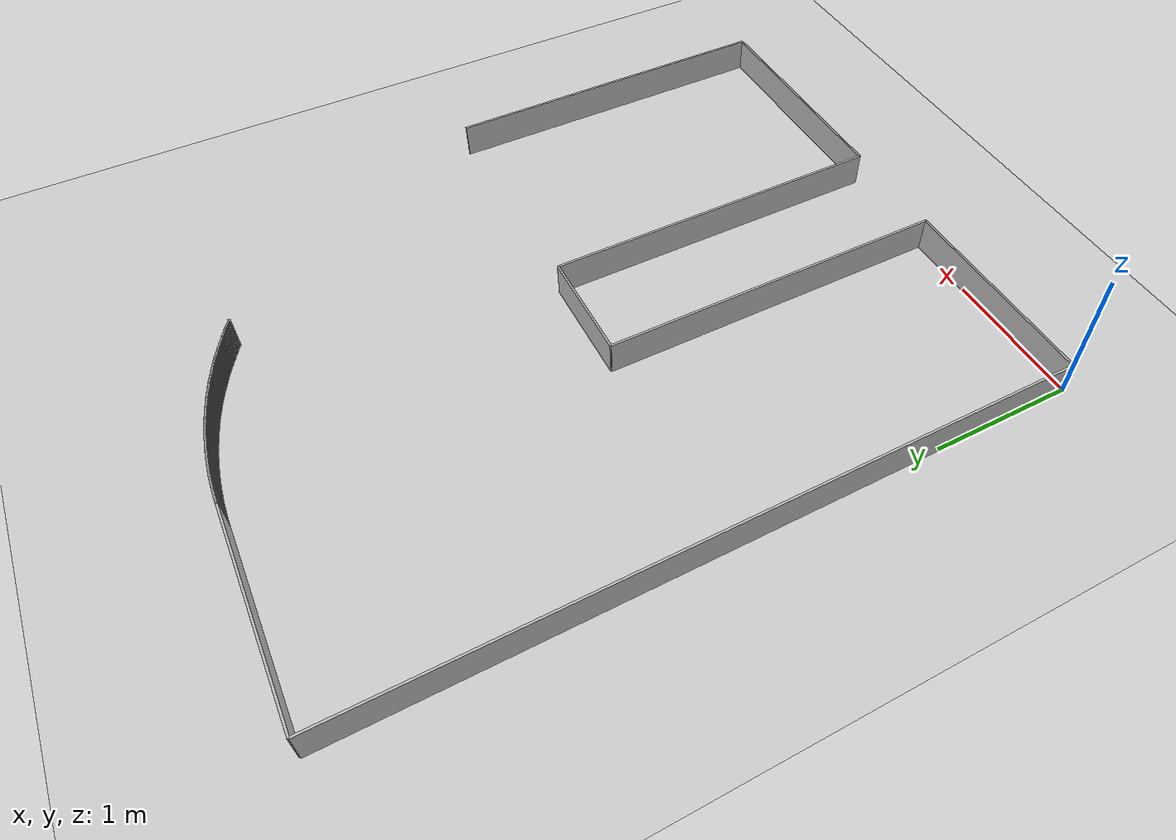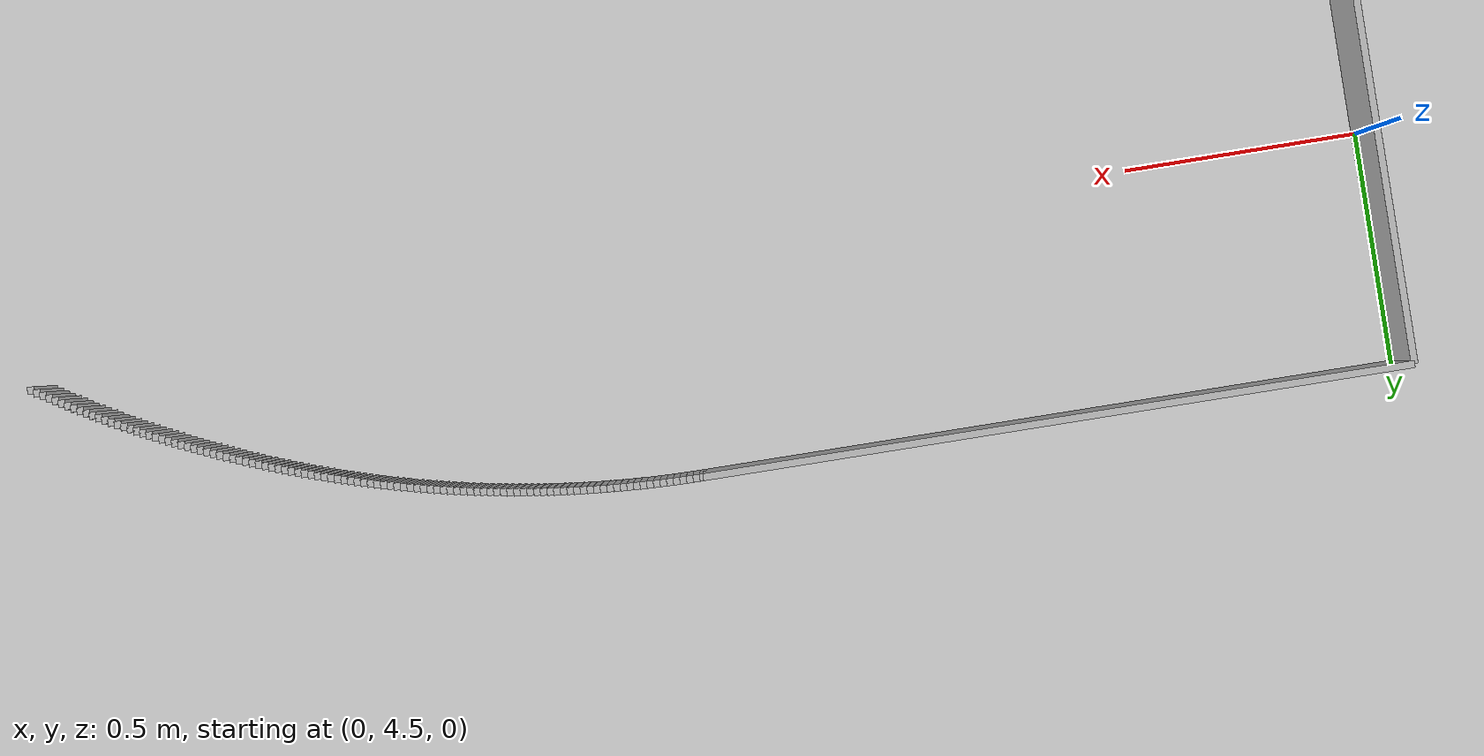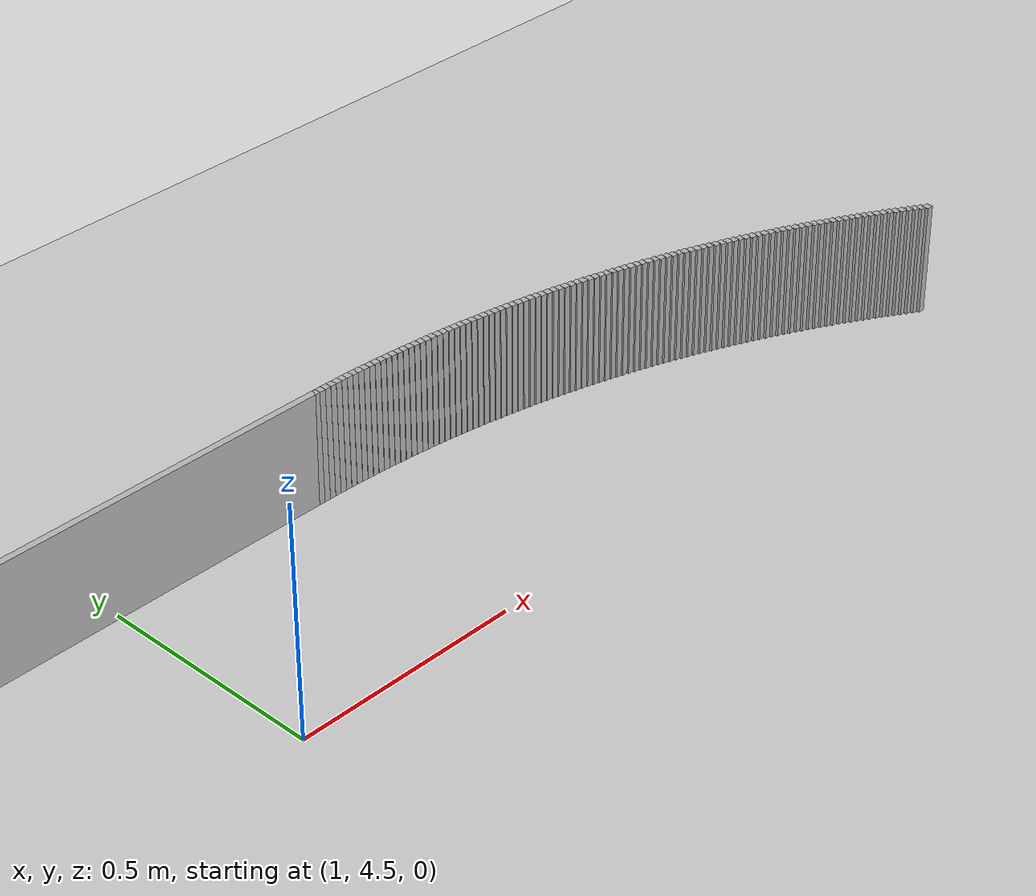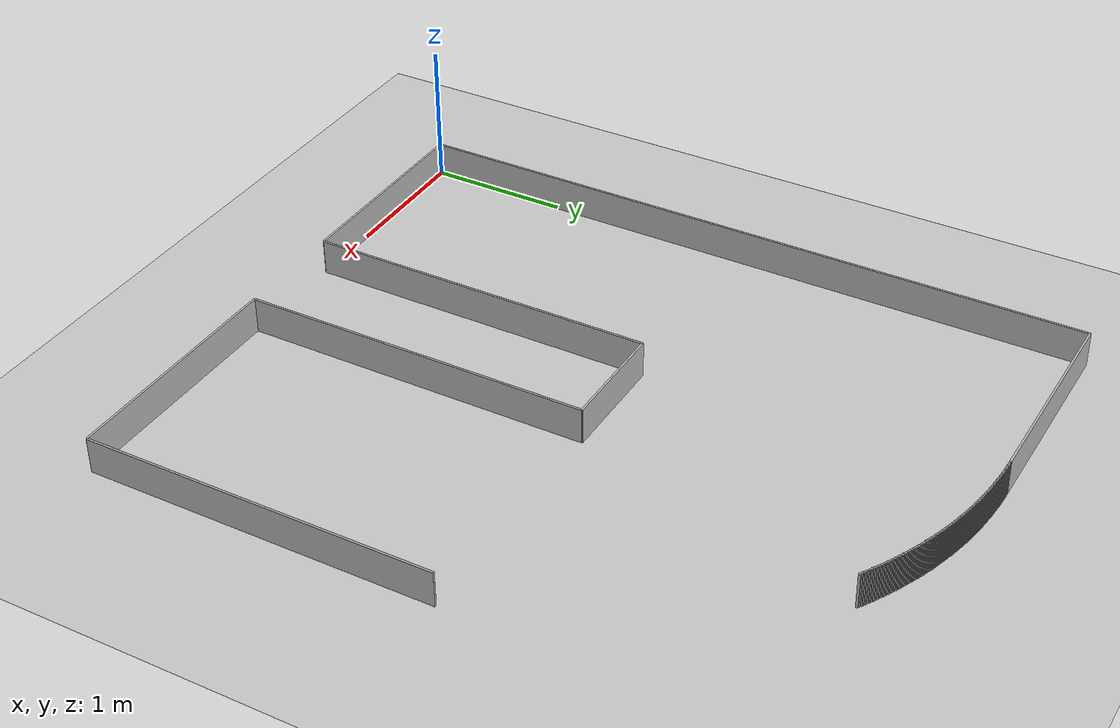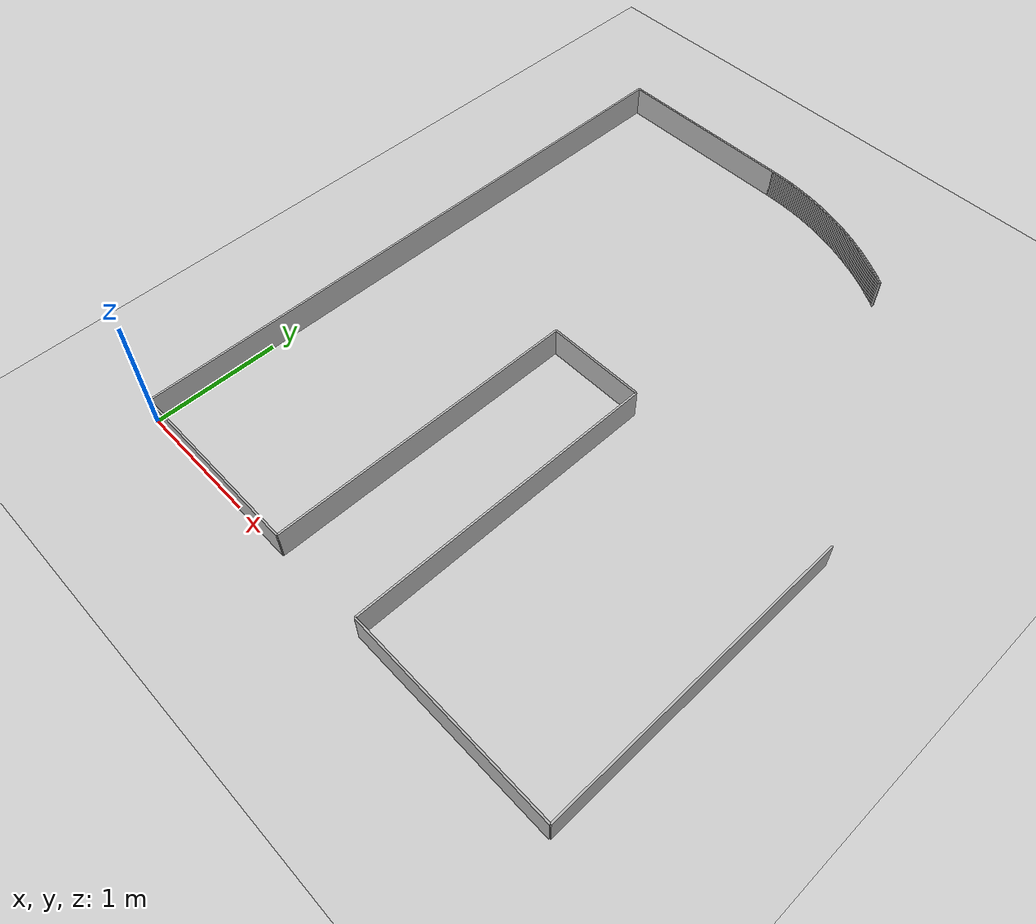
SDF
<sdf version="1.6">
 <world name="base">
  <include><uri>model://sun</uri></include>
  <include><uri>model://ground_plane</uri></include>
  <model name="k404">
   <link name="0_link">
    <collision name="collision_0">
     <pose>0.75 5.0 0 0 -0 0</pose>
     <geometry><box><size>1.5 0.015 0.50</size></box></geometry>
    </collision>
    <visual name="visual_0">
     <pose>0.75 5.0 0 0 -0 0</pose>
     <geometry><box><size>1.5 0.015 0.50</size></box></geometry>
    </visual>
   </link>
   <link name="1_link">
    <collision name="collision_1">
     <pose>0.0 2.5 0 0 -0 0</pose>
     <geometry><box><size>0.015 5.0 0.50</size></box></geometry>
    </collision>
    <visual name="visual_1">
     <pose>0.0 2.5 0 0 -0 0</pose>
     <geometry><box><size>0.015 5.0 0.50</size></box></geometry>
    </visual>
   </link>
   <link name="2_link">
    <collision name="collision_2">
     <pose>0.75 0.0 0 0 -0 0</pose>
     <geometry><box><size>1.5 0.015 0.50</size></box></geometry>
    </collision>
    <visual name="visual_2">
     <pose>0.75 0.0 0 0 -0 0</pose>
     <geometry><box><size>1.5 0.015 0.50</size></box></geometry>
    </visual>
   </link>
   <link name="3_link">
    <collision name="collision_3">
     <pose>1.5 1.25 0 0 -0 0</pose>
     <geometry><box><size>0.015 2.5 0.50</size></box></geometry>
    </collision>
    <visual name="visual_3">
     <pose>1.5 1.25 0 0 -0 0</pose>
     <geometry><box><size>0.015 2.5 0.50</size></box></geometry>
    </visual>
   </link>
   <link name="4_link">
    <collision name="collision_4">
     <pose>1.9 2.5 0 0 -0 0</pose>
     <geometry><box><size>0.8 0.015 0.50</size></box></geometry>
    </collision>
    <visual name="visual_4">
     <pose>1.9 2.5 0 0 -0 0</pose>
     <geometry><box><size>0.8 0.015 0.50</size></box></geometry>
    </visual>
   </link>
   <link name="5_link">
    <collision name="collision_5">
     <pose>2.3 1.25 0 0 -0 0</pose>
     <geometry><box><size>0.015 2.5 0.50</size></box></geometry>
    </collision>
    <visual name="visual_5">
     <pose>2.3 1.25 0 0 -0 0</pose>
     <geometry><box><size>0.015 2.5 0.50</size></box></geometry>
    </visual>
   </link>
   <link name="6_link">
    <collision name="collision_6">
     <pose>3.15 0.0 0 0 -0 0</pose>
     <geometry><box><size>1.7 0.015 0.50</size></box></geometry>
    </collision>
    <visual name="visual_6">
     <pose>3.15 0.0 0 0 -0 0</pose>
     <geometry><box><size>1.7 0.015 0.50</size></box></geometry>
    </visual>
   </link>
   <link name="7_link">
    <collision name="collision_7">
     <pose>4.0 1.25 0 0 -0 0</pose>
     <geometry><box><size>0.015 2.5 0.50</size></box></geometry>
    </collision>
    <visual name="visual_7">
     <pose>4.0 1.25 0 0 -0 0</pose>
     <geometry><box><size>0.015 2.5 0.50</size></box></geometry>
    </visual>
   </link>
   <link name="8_link">
    <collision name="collision_8">
     <pose>1.5 5.0 0 0 -0 0</pose>
     <geometry><box><size>0.015 0.015 0.50</size></box></geometry>
    </collision>
    <visual name="visual_8">
     <pose>1.5 5.0 0 0 -0 0</pose>
     <geometry><box><size>0.015 0.015 0.50</size></box></geometry>
    </visual>
   </link>
   <link name="9_link">
    <collision name="collision_9">
     <pose>1.5138888174440974 4.9999614198523155 0 0 -0 0</pose>
     <geometry><box><size>0.015 0.015 0.50</size></box></geometry>
    </collision>
    <visual name="visual_9">
     <pose>1.5138888174440974 4.9999614198523155 0 0 -0 0</pose>
     <geometry><box><size>0.015 0.015 0.50</size></box></geometry>
    </visual>
   </link>
   <link name="10_link">
    <collision name="collision_10">
     <pose>1.5277772062220925 4.999845680600004 0 0 -0 0</pose>
     <geometry><box><size>0.015 0.015 0.50</size></box></geometry>
    </collision>
    <visual name="visual_10">
     <pose>1.5277772062220925 4.999845680600004 0 0 -0 0</pose>
     <geometry><box><size>0.015 0.015 0.50</size></box></geometry>
    </visual>
   </link>
   <link name="11_link">
    <collision name="collision_11">
     <pose>1.5416647376811126 4.999652785815255 0 0 -0 0</pose>
     <geometry><box><size>0.015 0.015 0.50</size></box></geometry>
    </collision>
    <visual name="visual_11">
     <pose>1.5416647376811126 4.999652785815255 0 0 -0 0</pose>
     <geometry><box><size>0.015 0.015 0.50</size></box></geometry>
    </visual>
   </link>
   <link name="12_link">
    <collision name="collision_12">
     <pose>1.5555509831947465 4.999382741451596 0 0 -0 0</pose>
     <geometry><box><size>0.015 0.015 0.50</size></box></geometry>
    </collision>
    <visual name="visual_12">
     <pose>1.5555509831947465 4.999382741451596 0 0 -0 0</pose>
     <geometry><box><size>0.015 0.015 0.50</size></box></geometry>
    </visual>
   </link>
   <link name="13_link">
    <collision name="collision_13">
     <pose>1.569435514176272 4.999035555843709 0 0 -0 0</pose>
     <geometry><box><size>0.015 0.015 0.50</size></box></geometry>
    </collision>
    <visual name="visual_13">
     <pose>1.569435514176272 4.999035555843709 0 0 -0 0</pose>
     <geometry><box><size>0.015 0.015 0.50</size></box></geometry>
    </visual>
   </link>
   <link name="14_link">
    <collision name="collision_14">
     <pose>1.583317902091884 4.998611239707172 0 0 -0 0</pose>
     <geometry><box><size>0.015 0.015 0.50</size></box></geometry>
    </collision>
    <visual name="visual_14">
     <pose>1.583317902091884 4.998611239707172 0 0 -0 0</pose>
     <geometry><box><size>0.015 0.015 0.50</size></box></geometry>
    </visual>
   </link>
   <link name="15_link">
    <collision name="collision_15">
     <pose>1.5971977184739221 4.9981098061381255 0 0 -0 0</pose>
     <geometry><box><size>0.015 0.015 0.50</size></box></geometry>
    </collision>
    <visual name="visual_15">
     <pose>1.5971977184739221 4.9981098061381255 0 0 -0 0</pose>
     <geometry><box><size>0.015 0.015 0.50</size></box></geometry>
    </visual>
   </link>
   <link name="16_link">
    <collision name="collision_16">
     <pose>1.6110745349340938 4.997531270612878 0 0 -0 0</pose>
     <geometry><box><size>0.015 0.015 0.50</size></box></geometry>
    </collision>
    <visual name="visual_16">
     <pose>1.6110745349340938 4.997531270612878 0 0 -0 0</pose>
     <geometry><box><size>0.015 0.015 0.50</size></box></geometry>
    </visual>
   </link>
   <link name="17_link">
    <collision name="collision_17">
     <pose>1.624947923176696 4.996875650987416 0 0 -0 0</pose>
     <geometry><box><size>0.015 0.015 0.50</size></box></geometry>
    </collision>
    <visual name="visual_17">
     <pose>1.624947923176696 4.996875650987416 0 0 -0 0</pose>
     <geometry><box><size>0.015 0.015 0.50</size></box></geometry>
    </visual>
   </link>
   <link name="18_link">
    <collision name="collision_18">
     <pose>1.6388174550118346 4.996142967496861 0 0 -0 0</pose>
     <geometry><box><size>0.015 0.015 0.50</size></box></geometry>
    </collision>
    <visual name="visual_18">
     <pose>1.6388174550118346 4.996142967496861 0 0 -0 0</pose>
     <geometry><box><size>0.015 0.015 0.50</size></box></geometry>
    </visual>
   </link>
   <link name="19_link">
    <collision name="collision_19">
     <pose>1.652682702368641 4.995333242754844 0 0 -0 0</pose>
     <geometry><box><size>0.015 0.015 0.50</size></box></geometry>
    </collision>
    <visual name="visual_19">
     <pose>1.652682702368641 4.995333242754844 0 0 -0 0</pose>
     <geometry><box><size>0.015 0.015 0.50</size></box></geometry>
    </visual>
   </link>
   <link name="20_link">
    <collision name="collision_20">
     <pose>1.6665432373084825 4.994446501752806 0 0 -0 0</pose>
     <geometry><box><size>0.015 0.015 0.50</size></box></geometry>
    </collision>
    <visual name="visual_20">
     <pose>1.6665432373084825 4.994446501752806 0 0 -0 0</pose>
     <geometry><box><size>0.015 0.015 0.50</size></box></geometry>
    </visual>
   </link>
   <link name="21_link">
    <collision name="collision_21">
     <pose>1.680398632038171 4.993482771859224 0 0 -0 0</pose>
     <geometry><box><size>0.015 0.015 0.50</size></box></geometry>
    </collision>
    <visual name="visual_21">
     <pose>1.680398632038171 4.993482771859224 0 0 -0 0</pose>
     <geometry><box><size>0.015 0.015 0.50</size></box></geometry>
    </visual>
   </link>
   <link name="22_link">
    <collision name="collision_22">
     <pose>1.6942484589231663 4.992442082818771 0 0 -0 0</pose>
     <geometry><box><size>0.015 0.015 0.50</size></box></geometry>
    </collision>
    <visual name="visual_22">
     <pose>1.6942484589231663 4.992442082818771 0 0 -0 0</pose>
     <geometry><box><size>0.015 0.015 0.50</size></box></geometry>
    </visual>
   </link>
   <link name="23_link">
    <collision name="collision_23">
     <pose>1.7080922905007756 4.991324466751399 0 0 -0 0</pose>
     <geometry><box><size>0.015 0.015 0.50</size></box></geometry>
    </collision>
    <visual name="visual_23">
     <pose>1.7080922905007756 4.991324466751399 0 0 -0 0</pose>
     <geometry><box><size>0.015 0.015 0.50</size></box></geometry>
    </visual>
   </link>
   <link name="24_link">
    <collision name="collision_24">
     <pose>1.7219296994933453 4.990129958151339 0 0 -0 0</pose>
     <geometry><box><size>0.015 0.015 0.50</size></box></geometry>
    </collision>
    <visual name="visual_24">
     <pose>1.7219296994933453 4.990129958151339 0 0 -0 0</pose>
     <geometry><box><size>0.015 0.015 0.50</size></box></geometry>
    </visual>
   </link>
   <link name="25_link">
    <collision name="collision_25">
     <pose>1.7357602588214491 4.988858593886049 0 0 -0 0</pose>
     <geometry><box><size>0.015 0.015 0.50</size></box></geometry>
    </collision>
    <visual name="visual_25">
     <pose>1.7357602588214491 4.988858593886049 0 0 -0 0</pose>
     <geometry><box><size>0.015 0.015 0.50</size></box></geometry>
    </visual>
   </link>
   <link name="26_link">
    <collision name="collision_26">
     <pose>1.7495835416170704 4.987510413195064 0 0 -0 0</pose>
     <geometry><box><size>0.015 0.015 0.50</size></box></geometry>
    </collision>
    <visual name="visual_26">
     <pose>1.7495835416170704 4.987510413195064 0 0 -0 0</pose>
     <geometry><box><size>0.015 0.015 0.50</size></box></geometry>
    </visual>
   </link>
   <link name="27_link">
    <collision name="collision_27">
     <pose>1.7633991212367754 4.986085457688793 0 0 -0 0</pose>
     <geometry><box><size>0.015 0.015 0.50</size></box></geometry>
    </collision>
    <visual name="visual_27">
     <pose>1.7633991212367754 4.986085457688793 0 0 -0 0</pose>
     <geometry><box><size>0.015 0.015 0.50</size></box></geometry>
    </visual>
   </link>
   <link name="28_link">
    <collision name="collision_28">
     <pose>1.7772065712748826 4.98458377134723 0 0 -0 0</pose>
     <geometry><box><size>0.015 0.015 0.50</size></box></geometry>
    </collision>
    <visual name="visual_28">
     <pose>1.7772065712748826 4.98458377134723 0 0 -0 0</pose>
     <geometry><box><size>0.015 0.015 0.50</size></box></geometry>
    </visual>
   </link>
   <link name="29_link">
    <collision name="collision_29">
     <pose>1.7910054655766223 4.9830054005186 0 0 -0 0</pose>
     <geometry><box><size>0.015 0.015 0.50</size></box></geometry>
    </collision>
    <visual name="visual_29">
     <pose>1.7910054655766223 4.9830054005186 0 0 -0 0</pose>
     <geometry><box><size>0.015 0.015 0.50</size></box></geometry>
    </visual>
   </link>
   <link name="30_link">
    <collision name="collision_30">
     <pose>1.804795378251291 4.981350393917927 0 0 -0 0</pose>
     <geometry><box><size>0.015 0.015 0.50</size></box></geometry>
    </collision>
    <visual name="visual_30">
     <pose>1.804795378251291 4.981350393917927 0 0 -0 0</pose>
     <geometry><box><size>0.015 0.015 0.50</size></box></geometry>
    </visual>
   </link>
   <link name="31_link">
    <collision name="collision_31">
     <pose>1.8185758836853947 4.979618802625531 0 0 -0 0</pose>
     <geometry><box><size>0.015 0.015 0.50</size></box></geometry>
    </collision>
    <visual name="visual_31">
     <pose>1.8185758836853947 4.979618802625531 0 0 -0 0</pose>
     <geometry><box><size>0.015 0.015 0.50</size></box></geometry>
    </visual>
   </link>
   <link name="32_link">
    <collision name="collision_32">
     <pose>1.8323465565557853 4.977810680085449 0 0 -0 0</pose>
     <geometry><box><size>0.015 0.015 0.50</size></box></geometry>
    </collision>
    <visual name="visual_32">
     <pose>1.8323465565557853 4.977810680085449 0 0 -0 0</pose>
     <geometry><box><size>0.015 0.015 0.50</size></box></geometry>
    </visual>
   </link>
   <link name="33_link">
    <collision name="collision_33">
     <pose>1.8461069718427883 4.975926082103788 0 0 -0 0</pose>
     <geometry><box><size>0.015 0.015 0.50</size></box></geometry>
    </collision>
    <visual name="visual_33">
     <pose>1.8461069718427883 4.975926082103788 0 0 -0 0</pose>
     <geometry><box><size>0.015 0.015 0.50</size></box></geometry>
    </visual>
   </link>
   <link name="34_link">
    <collision name="collision_34">
     <pose>1.8598567048433203 4.973965066847006 0 0 -0 0</pose>
     <geometry><box><size>0.015 0.015 0.50</size></box></geometry>
    </collision>
    <visual name="visual_34">
     <pose>1.8598567048433203 4.973965066847006 0 0 -0 0</pose>
     <geometry><box><size>0.015 0.015 0.50</size></box></geometry>
    </visual>
   </link>
   <link name="35_link">
    <collision name="collision_35">
     <pose>1.873595331183998 4.971927694840105 0 0 -0 0</pose>
     <geometry><box><size>0.015 0.015 0.50</size></box></geometry>
    </collision>
    <visual name="visual_35">
     <pose>1.873595331183998 4.971927694840105 0 0 -0 0</pose>
     <geometry><box><size>0.015 0.015 0.50</size></box></geometry>
    </visual>
   </link>
   <link name="36_link">
    <collision name="collision_36">
     <pose>1.8873224268342346 4.96981402896478 0 0 -0 0</pose>
     <geometry><box><size>0.015 0.015 0.50</size></box></geometry>
    </collision>
    <visual name="visual_36">
     <pose>1.8873224268342346 4.96981402896478 0 0 -0 0</pose>
     <geometry><box><size>0.015 0.015 0.50</size></box></geometry>
    </visual>
   </link>
   <link name="37_link">
    <collision name="collision_37">
     <pose>1.9010375681193281 4.967624134457461 0 0 -0 0</pose>
     <geometry><box><size>0.015 0.015 0.50</size></box></geometry>
    </collision>
    <visual name="visual_37">
     <pose>1.9010375681193281 4.967624134457461 0 0 -0 0</pose>
     <geometry><box><size>0.015 0.015 0.50</size></box></geometry>
    </visual>
   </link>
   <link name="38_link">
    <collision name="collision_38">
     <pose>1.9147403317335376 4.965358078907313 0 0 -0 0</pose>
     <geometry><box><size>0.015 0.015 0.50</size></box></geometry>
    </collision>
    <visual name="visual_38">
     <pose>1.9147403317335376 4.965358078907313 0 0 -0 0</pose>
     <geometry><box><size>0.015 0.015 0.50</size></box></geometry>
    </visual>
   </link>
   <link name="39_link">
    <collision name="collision_39">
     <pose>1.9284302947531478 4.96301593225414 0 0 -0 0</pose>
     <geometry><box><size>0.015 0.015 0.50</size></box></geometry>
    </collision>
    <visual name="visual_39">
     <pose>1.9284302947531478 4.96301593225414 0 0 -0 0</pose>
     <geometry><box><size>0.015 0.015 0.50</size></box></geometry>
    </visual>
   </link>
   <link name="40_link">
    <collision name="collision_40">
     <pose>1.9421070346495226 4.960597766786234 0 0 -0 0</pose>
     <geometry><box><size>0.015 0.015 0.50</size></box></geometry>
    </collision>
    <visual name="visual_40">
     <pose>1.9421070346495226 4.960597766786234 0 0 -0 0</pose>
     <geometry><box><size>0.015 0.015 0.50</size></box></geometry>
    </visual>
   </link>
   <link name="41_link">
    <collision name="collision_41">
     <pose>1.955770129302146 4.958103657138141 0 0 -0 0</pose>
     <geometry><box><size>0.015 0.015 0.50</size></box></geometry>
    </collision>
    <visual name="visual_41">
     <pose>1.955770129302146 4.958103657138141 0 0 -0 0</pose>
     <geometry><box><size>0.015 0.015 0.50</size></box></geometry>
    </visual>
   </link>
   <link name="42_link">
    <collision name="collision_42">
     <pose>1.9694191570116506 4.9555336802883545 0 0 -0 0</pose>
     <geometry><box><size>0.015 0.015 0.50</size></box></geometry>
    </collision>
    <visual name="visual_42">
     <pose>1.9694191570116506 4.9555336802883545 0 0 -0 0</pose>
     <geometry><box><size>0.015 0.015 0.50</size></box></geometry>
    </visual>
   </link>
   <link name="43_link">
    <collision name="collision_43">
     <pose>1.9830536965128323 4.952887915556944 0 0 -0 0</pose>
     <geometry><box><size>0.015 0.015 0.50</size></box></geometry>
    </collision>
    <visual name="visual_43">
     <pose>1.9830536965128323 4.952887915556944 0 0 -0 0</pose>
     <geometry><box><size>0.015 0.015 0.50</size></box></geometry>
    </visual>
   </link>
   <link name="44_link">
    <collision name="collision_44">
     <pose>1.996673326987653 4.950166444603104 0 0 -0 0</pose>
     <geometry><box><size>0.015 0.015 0.50</size></box></geometry>
    </collision>
    <visual name="visual_44">
     <pose>1.996673326987653 4.950166444603104 0 0 -0 0</pose>
     <geometry><box><size>0.015 0.015 0.50</size></box></geometry>
    </visual>
   </link>
   <link name="45_link">
    <collision name="collision_45">
     <pose>2.010277628078229 4.947369351422637 0 0 -0 0</pose>
     <geometry><box><size>0.015 0.015 0.50</size></box></geometry>
    </collision>
    <visual name="visual_45">
     <pose>2.010277628078229 4.947369351422637 0 0 -0 0</pose>
     <geometry><box><size>0.015 0.015 0.50</size></box></geometry>
    </visual>
   </link>
   <link name="46_link">
    <collision name="collision_46">
     <pose>2.0238661798998034 4.944496722345356 0 0 -0 0</pose>
     <geometry><box><size>0.015 0.015 0.50</size></box></geometry>
    </collision>
    <visual name="visual_46">
     <pose>2.0238661798998034 4.944496722345356 0 0 -0 0</pose>
     <geometry><box><size>0.015 0.015 0.50</size></box></geometry>
    </visual>
   </link>
   <link name="47_link">
    <collision name="collision_47">
     <pose>2.0374385630537084 4.941548646032425 0 0 -0 0</pose>
     <geometry><box><size>0.015 0.015 0.50</size></box></geometry>
    </collision>
    <visual name="visual_47">
     <pose>2.0374385630537084 4.941548646032425 0 0 -0 0</pose>
     <geometry><box><size>0.015 0.015 0.50</size></box></geometry>
    </visual>
   </link>
   <link name="48_link">
    <collision name="collision_48">
     <pose>2.0509943586403057 4.938525213473619 0 0 -0 0</pose>
     <geometry><box><size>0.015 0.015 0.50</size></box></geometry>
    </collision>
    <visual name="visual_48">
     <pose>2.0509943586403057 4.938525213473619 0 0 -0 0</pose>
     <geometry><box><size>0.015 0.015 0.50</size></box></geometry>
    </visual>
   </link>
   <link name="49_link">
    <collision name="collision_49">
     <pose>2.064533148271919 4.935426517984519 0 0 -0 0</pose>
     <geometry><box><size>0.015 0.015 0.50</size></box></geometry>
    </collision>
    <visual name="visual_49">
     <pose>2.064533148271919 4.935426517984519 0 0 -0 0</pose>
     <geometry><box><size>0.015 0.015 0.50</size></box></geometry>
    </visual>
   </link>
   <link name="50_link">
    <collision name="collision_50">
     <pose>2.0780545140857463 4.9322526552036265 0 0 -0 0</pose>
     <geometry><box><size>0.015 0.015 0.50</size></box></geometry>
    </collision>
    <visual name="visual_50">
     <pose>2.0780545140857463 4.9322526552036265 0 0 -0 0</pose>
     <geometry><box><size>0.015 0.015 0.50</size></box></geometry>
    </visual>
   </link>
   <link name="51_link">
    <collision name="collision_51">
     <pose>2.091558038756755 4.929003723089419 0 0 -0 0</pose>
     <geometry><box><size>0.015 0.015 0.50</size></box></geometry>
    </collision>
    <visual name="visual_51">
     <pose>2.091558038756755 4.929003723089419 0 0 -0 0</pose>
     <geometry><box><size>0.015 0.015 0.50</size></box></geometry>
    </visual>
   </link>
   <link name="52_link">
    <collision name="collision_52">
     <pose>2.1050433055105637 4.925679821917322 0 0 -0 0</pose>
     <geometry><box><size>0.015 0.015 0.50</size></box></geometry>
    </collision>
    <visual name="visual_52">
     <pose>2.1050433055105637 4.925679821917322 0 0 -0 0</pose>
     <geometry><box><size>0.015 0.015 0.50</size></box></geometry>
    </visual>
   </link>
   <link name="53_link">
    <collision name="collision_53">
     <pose>2.118509898136307 4.922281054276612 0 0 -0 0</pose>
     <geometry><box><size>0.015 0.015 0.50</size></box></geometry>
    </collision>
    <visual name="visual_53">
     <pose>2.118509898136307 4.922281054276612 0 0 -0 0</pose>
     <geometry><box><size>0.015 0.015 0.50</size></box></geometry>
    </visual>
   </link>
   <link name="54_link">
    <collision name="collision_54">
     <pose>2.131957400999479 4.918807525067256 0 0 -0 0</pose>
     <geometry><box><size>0.015 0.015 0.50</size></box></geometry>
    </collision>
    <visual name="visual_54">
     <pose>2.131957400999479 4.918807525067256 0 0 -0 0</pose>
     <geometry><box><size>0.015 0.015 0.50</size></box></geometry>
    </visual>
   </link>
   <link name="55_link">
    <collision name="collision_55">
     <pose>2.1453853990547618 4.91525934149667 0 0 -0 0</pose>
     <geometry><box><size>0.015 0.015 0.50</size></box></geometry>
    </collision>
    <visual name="visual_55">
     <pose>2.1453853990547618 4.91525934149667 0 0 -0 0</pose>
     <geometry><box><size>0.015 0.015 0.50</size></box></geometry>
    </visual>
   </link>
   <link name="56_link">
    <collision name="collision_56">
     <pose>2.1587934778588376 4.91163661307641 0 0 -0 0</pose>
     <geometry><box><size>0.015 0.015 0.50</size></box></geometry>
    </collision>
    <visual name="visual_56">
     <pose>2.1587934778588376 4.91163661307641 0 0 -0 0</pose>
     <geometry><box><size>0.015 0.015 0.50</size></box></geometry>
    </visual>
   </link>
   <link name="57_link">
    <collision name="collision_57">
     <pose>2.172181223583178 4.907939451618795 0 0 -0 0</pose>
     <geometry><box><size>0.015 0.015 0.50</size></box></geometry>
    </collision>
    <visual name="visual_57">
     <pose>2.172181223583178 4.907939451618795 0 0 -0 0</pose>
     <geometry><box><size>0.015 0.015 0.50</size></box></geometry>
    </visual>
   </link>
   <link name="58_link">
    <collision name="collision_58">
     <pose>2.1855482230268164 4.904167971233452 0 0 -0 0</pose>
     <geometry><box><size>0.015 0.015 0.50</size></box></geometry>
    </collision>
    <visual name="visual_58">
     <pose>2.1855482230268164 4.904167971233452 0 0 -0 0</pose>
     <geometry><box><size>0.015 0.015 0.50</size></box></geometry>
    </visual>
   </link>
   <link name="59_link">
    <collision name="collision_59">
     <pose>2.198894063629104 4.900322288323799 0 0 -0 0</pose>
     <geometry><box><size>0.015 0.015 0.50</size></box></geometry>
    </collision>
    <visual name="visual_59">
     <pose>2.198894063629104 4.900322288323799 0 0 -0 0</pose>
     <geometry><box><size>0.015 0.015 0.50</size></box></geometry>
    </visual>
   </link>
   <link name="60_link">
    <collision name="collision_60">
     <pose>2.2122183334824386 4.896402521583446 0 0 -0 0</pose>
     <geometry><box><size>0.015 0.015 0.50</size></box></geometry>
    </collision>
    <visual name="visual_60">
     <pose>2.2122183334824386 4.896402521583446 0 0 -0 0</pose>
     <geometry><box><size>0.015 0.015 0.50</size></box></geometry>
    </visual>
   </link>
   <link name="61_link">
    <collision name="collision_61">
     <pose>2.2255206213449816 4.892408791992537 0 0 -0 0</pose>
     <geometry><box><size>0.015 0.015 0.50</size></box></geometry>
    </collision>
    <visual name="visual_61">
     <pose>2.2255206213449816 4.892408791992537 0 0 -0 0</pose>
     <geometry><box><size>0.015 0.015 0.50</size></box></geometry>
    </visual>
   </link>
   <link name="62_link">
    <collision name="collision_62">
     <pose>2.238800516653349 4.888341222814015 0 0 -0 0</pose>
     <geometry><box><size>0.015 0.015 0.50</size></box></geometry>
    </collision>
    <visual name="visual_62">
     <pose>2.238800516653349 4.888341222814015 0 0 -0 0</pose>
     <geometry><box><size>0.015 0.015 0.50</size></box></geometry>
    </visual>
   </link>
   <link name="63_link">
    <collision name="collision_63">
     <pose>2.2520576095352824 4.884199939589815 0 0 -0 0</pose>
     <geometry><box><size>0.015 0.015 0.50</size></box></geometry>
    </collision>
    <visual name="visual_63">
     <pose>2.2520576095352824 4.884199939589815 0 0 -0 0</pose>
     <geometry><box><size>0.015 0.015 0.50</size></box></geometry>
    </visual>
   </link>
   <link name="64_link">
    <collision name="collision_64">
     <pose>2.265291490822302 4.879985070136991 0 0 -0 0</pose>
     <geometry><box><size>0.015 0.015 0.50</size></box></geometry>
    </collision>
    <visual name="visual_64">
     <pose>2.265291490822302 4.879985070136991 0 0 -0 0</pose>
     <geometry><box><size>0.015 0.015 0.50</size></box></geometry>
    </visual>
   </link>
   <link name="65_link">
    <collision name="collision_65">
     <pose>2.278501752062331 4.875696744543773 0 0 -0 0</pose>
     <geometry><box><size>0.015 0.015 0.50</size></box></geometry>
    </collision>
    <visual name="visual_65">
     <pose>2.278501752062331 4.875696744543773 0 0 -0 0</pose>
     <geometry><box><size>0.015 0.015 0.50</size></box></geometry>
    </visual>
   </link>
   <link name="66_link">
    <collision name="collision_66">
     <pose>2.291687985532306 4.8713350951655485 0 0 -0 0</pose>
     <geometry><box><size>0.015 0.015 0.50</size></box></geometry>
    </collision>
    <visual name="visual_66">
     <pose>2.291687985532306 4.8713350951655485 0 0 -0 0</pose>
     <geometry><box><size>0.015 0.015 0.50</size></box></geometry>
    </visual>
   </link>
   <link name="67_link">
    <collision name="collision_67">
     <pose>2.3048497842507594 4.866900256620778 0 0 -0 0</pose>
     <geometry><box><size>0.015 0.015 0.50</size></box></geometry>
    </collision>
    <visual name="visual_67">
     <pose>2.3048497842507594 4.866900256620778 0 0 -0 0</pose>
     <geometry><box><size>0.015 0.015 0.50</size></box></geometry>
    </visual>
   </link>
   <link name="68_link">
    <collision name="collision_68">
     <pose>2.3179867419903806 4.862392365786844 0 0 -0 0</pose>
     <geometry><box><size>0.015 0.015 0.50</size></box></geometry>
    </collision>
    <visual name="visual_68">
     <pose>2.3179867419903806 4.862392365786844 0 0 -0 0</pose>
     <geometry><box><size>0.015 0.015 0.50</size></box></geometry>
    </visual>
   </link>
   <link name="69_link">
    <collision name="collision_69">
     <pose>2.331098453290554 4.857811561795821 0 0 -0 0</pose>
     <geometry><box><size>0.015 0.015 0.50</size></box></geometry>
    </collision>
    <visual name="visual_69">
     <pose>2.331098453290554 4.857811561795821 0 0 -0 0</pose>
     <geometry><box><size>0.015 0.015 0.50</size></box></geometry>
    </visual>
   </link>
   <link name="70_link">
    <collision name="collision_70">
     <pose>2.344184513469872 4.853157986030185 0 0 -0 0</pose>
     <geometry><box><size>0.015 0.015 0.50</size></box></geometry>
    </collision>
    <visual name="visual_70">
     <pose>2.344184513469872 4.853157986030185 0 0 -0 0</pose>
     <geometry><box><size>0.015 0.015 0.50</size></box></geometry>
    </visual>
   </link>
   <link name="71_link">
    <collision name="collision_71">
     <pose>2.3572445186386286 4.848431782118447 0 0 -0 0</pose>
     <geometry><box><size>0.015 0.015 0.50</size></box></geometry>
    </collision>
    <visual name="visual_71">
     <pose>2.3572445186386286 4.848431782118447 0 0 -0 0</pose>
     <geometry><box><size>0.015 0.015 0.50</size></box></geometry>
    </visual>
   </link>
   <link name="72_link">
    <collision name="collision_72">
     <pose>2.37027806571128 4.843633095930725 0 0 -0 0</pose>
     <geometry><box><size>0.015 0.015 0.50</size></box></geometry>
    </collision>
    <visual name="visual_72">
     <pose>2.37027806571128 4.843633095930725 0 0 -0 0</pose>
     <geometry><box><size>0.015 0.015 0.50</size></box></geometry>
    </visual>
   </link>
   <link name="73_link">
    <collision name="collision_73">
     <pose>2.3832847524188896 4.838762075574234 0 0 -0 0</pose>
     <geometry><box><size>0.015 0.015 0.50</size></box></geometry>
    </collision>
    <visual name="visual_73">
     <pose>2.3832847524188896 4.838762075574234 0 0 -0 0</pose>
     <geometry><box><size>0.015 0.015 0.50</size></box></geometry>
    </visual>
   </link>
   <link name="74_link">
    <collision name="collision_74">
     <pose>2.3962641773215427 4.833818871388724 0 0 -0 0</pose>
     <geometry><box><size>0.015 0.015 0.50</size></box></geometry>
    </collision>
    <visual name="visual_74">
     <pose>2.3962641773215427 4.833818871388724 0 0 -0 0</pose>
     <geometry><box><size>0.015 0.015 0.50</size></box></geometry>
    </visual>
   </link>
   <link name="75_link">
    <collision name="collision_75">
     <pose>2.4092159398207356 4.828803635941831 0 0 -0 0</pose>
     <geometry><box><size>0.015 0.015 0.50</size></box></geometry>
    </collision>
    <visual name="visual_75">
     <pose>2.4092159398207356 4.828803635941831 0 0 -0 0</pose>
     <geometry><box><size>0.015 0.015 0.50</size></box></geometry>
    </visual>
   </link>
   <link name="76_link">
    <collision name="collision_76">
     <pose>2.42213964017174 4.823716524024377 0 0 -0 0</pose>
     <geometry><box><size>0.015 0.015 0.50</size></box></geometry>
    </collision>
    <visual name="visual_76">
     <pose>2.42213964017174 4.823716524024377 0 0 -0 0</pose>
     <geometry><box><size>0.015 0.015 0.50</size></box></geometry>
    </visual>
   </link>
   <link name="77_link">
    <collision name="collision_77">
     <pose>2.4350348794959418 4.818557692645583 0 0 -0 0</pose>
     <geometry><box><size>0.015 0.015 0.50</size></box></geometry>
    </collision>
    <visual name="visual_77">
     <pose>2.4350348794959418 4.818557692645583 0 0 -0 0</pose>
     <geometry><box><size>0.015 0.015 0.50</size></box></geometry>
    </visual>
   </link>
   <link name="78_link">
    <collision name="collision_78">
     <pose>2.44790125979315 4.813327301028231 0 0 -0 0</pose>
     <geometry><box><size>0.015 0.015 0.50</size></box></geometry>
    </collision>
    <visual name="visual_78">
     <pose>2.44790125979315 4.813327301028231 0 0 -0 0</pose>
     <geometry><box><size>0.015 0.015 0.50</size></box></geometry>
    </visual>
   </link>
   <link name="79_link">
    <collision name="collision_79">
     <pose>2.460738383953884 4.808025510603745 0 0 -0 0</pose>
     <geometry><box><size>0.015 0.015 0.50</size></box></geometry>
    </collision>
    <visual name="visual_79">
     <pose>2.460738383953884 4.808025510603745 0 0 -0 0</pose>
     <geometry><box><size>0.015 0.015 0.50</size></box></geometry>
    </visual>
   </link>
   <link name="80_link">
    <collision name="collision_80">
     <pose>2.4735458557716266 4.802652485007213 0 0 -0 0</pose>
     <geometry><box><size>0.015 0.015 0.50</size></box></geometry>
    </collision>
    <visual name="visual_80">
     <pose>2.4735458557716266 4.802652485007213 0 0 -0 0</pose>
     <geometry><box><size>0.015 0.015 0.50</size></box></geometry>
    </visual>
   </link>
   <link name="81_link">
    <collision name="collision_81">
     <pose>2.486323279955054 4.7972083900723295 0 0 -0 0</pose>
     <geometry><box><size>0.015 0.015 0.50</size></box></geometry>
    </collision>
    <visual name="visual_81">
     <pose>2.486323279955054 4.7972083900723295 0 0 -0 0</pose>
     <geometry><box><size>0.015 0.015 0.50</size></box></geometry>
    </visual>
   </link>
   <link name="82_link">
    <collision name="collision_82">
     <pose>2.499070262140237 4.791693393826286 0 0 -0 0</pose>
     <geometry><box><size>0.015 0.015 0.50</size></box></geometry>
    </collision>
    <visual name="visual_82">
     <pose>2.499070262140237 4.791693393826286 0 0 -0 0</pose>
     <geometry><box><size>0.015 0.015 0.50</size></box></geometry>
    </visual>
   </link>
   <link name="83_link">
    <collision name="collision_83">
     <pose>2.511786408902812 4.786107666484575 0 0 -0 0</pose>
     <geometry><box><size>0.015 0.015 0.50</size></box></geometry>
    </collision>
    <visual name="visual_83">
     <pose>2.511786408902812 4.786107666484575 0 0 -0 0</pose>
     <geometry><box><size>0.015 0.015 0.50</size></box></geometry>
    </visual>
   </link>
   <link name="84_link">
    <collision name="collision_84">
     <pose>2.524471327770122 4.780451380445749 0 0 -0 0</pose>
     <geometry><box><size>0.015 0.015 0.50</size></box></geometry>
    </collision>
    <visual name="visual_84">
     <pose>2.524471327770122 4.780451380445749 0 0 -0 0</pose>
     <geometry><box><size>0.015 0.015 0.50</size></box></geometry>
    </visual>
   </link>
   <link name="85_link">
    <collision name="collision_85">
     <pose>2.5371246272333323 4.774724710286087 0 0 -0 0</pose>
     <geometry><box><size>0.015 0.015 0.50</size></box></geometry>
    </collision>
    <visual name="visual_85">
     <pose>2.5371246272333323 4.774724710286087 0 0 -0 0</pose>
     <geometry><box><size>0.015 0.015 0.50</size></box></geometry>
    </visual>
   </link>
   <link name="86_link">
    <collision name="collision_86">
     <pose>2.5497459167595142 4.768927832754212 0 0 -0 0</pose>
     <geometry><box><size>0.015 0.015 0.50</size></box></geometry>
    </collision>
    <visual name="visual_86">
     <pose>2.5497459167595142 4.768927832754212 0 0 -0 0</pose>
     <geometry><box><size>0.015 0.015 0.50</size></box></geometry>
    </visual>
   </link>
   <link name="87_link">
    <collision name="collision_87">
     <pose>2.5623348068036966 4.76306092676564 0 0 -0 0</pose>
     <geometry><box><size>0.015 0.015 0.50</size></box></geometry>
    </collision>
    <visual name="visual_87">
     <pose>2.5623348068036966 4.76306092676564 0 0 -0 0</pose>
     <geometry><box><size>0.015 0.015 0.50</size></box></geometry>
    </visual>
   </link>
   <link name="88_link">
    <collision name="collision_88">
     <pose>2.5748909088208887 4.757124173397246 0 0 -0 0</pose>
     <geometry><box><size>0.015 0.015 0.50</size></box></geometry>
    </collision>
    <visual name="visual_88">
     <pose>2.5748909088208887 4.757124173397246 0 0 -0 0</pose>
     <geometry><box><size>0.015 0.015 0.50</size></box></geometry>
    </visual>
   </link>
   <link name="89_link">
    <collision name="collision_89">
     <pose>2.587413835278076 4.751117755881692 0 0 -0 0</pose>
     <geometry><box><size>0.015 0.015 0.50</size></box></geometry>
    </collision>
    <visual name="visual_89">
     <pose>2.587413835278076 4.751117755881692 0 0 -0 0</pose>
     <geometry><box><size>0.015 0.015 0.50</size></box></geometry>
    </visual>
   </link>
   <link name="90_link">
    <collision name="collision_90">
     <pose>2.5999031996661746 4.745041859601756 0 0 -0 0</pose>
     <geometry><box><size>0.015 0.015 0.50</size></box></geometry>
    </collision>
    <visual name="visual_90">
     <pose>2.5999031996661746 4.745041859601756 0 0 -0 0</pose>
     <geometry><box><size>0.015 0.015 0.50</size></box></geometry>
    </visual>
   </link>
   <link name="91_link">
    <collision name="collision_91">
     <pose>2.612358616511968 4.738896672084619 0 0 -0 0</pose>
     <geometry><box><size>0.015 0.015 0.50</size></box></geometry>
    </collision>
    <visual name="visual_91">
     <pose>2.612358616511968 4.738896672084619 0 0 -0 0</pose>
     <geometry><box><size>0.015 0.015 0.50</size></box></geometry>
    </visual>
   </link>
   <link name="92_link">
    <collision name="collision_92">
     <pose>2.624779701389999 4.732682382996073 0 0 -0 0</pose>
     <geometry><box><size>0.015 0.015 0.50</size></box></geometry>
    </collision>
    <visual name="visual_92">
     <pose>2.624779701389999 4.732682382996073 0 0 -0 0</pose>
     <geometry><box><size>0.015 0.015 0.50</size></box></geometry>
    </visual>
   </link>
   <link name="93_link">
    <collision name="collision_93">
     <pose>2.6371660709344362 4.726399184134673 0 0 -0 0</pose>
     <geometry><box><size>0.015 0.015 0.50</size></box></geometry>
    </collision>
    <visual name="visual_93">
     <pose>2.6371660709344362 4.726399184134673 0 0 -0 0</pose>
     <geometry><box><size>0.015 0.015 0.50</size></box></geometry>
    </visual>
   </link>
   <link name="94_link">
    <collision name="collision_94">
     <pose>2.6495173428509062 4.720047269425809 0 0 -0 0</pose>
     <geometry><box><size>0.015 0.015 0.50</size></box></geometry>
    </collision>
    <visual name="visual_94">
     <pose>2.6495173428509062 4.720047269425809 0 0 -0 0</pose>
     <geometry><box><size>0.015 0.015 0.50</size></box></geometry>
    </visual>
   </link>
   <link name="95_link">
    <collision name="collision_95">
     <pose>2.661833135928294 4.713626834915729 0 0 -0 0</pose>
     <geometry><box><size>0.015 0.015 0.50</size></box></geometry>
    </collision>
    <visual name="visual_95">
     <pose>2.661833135928294 4.713626834915729 0 0 -0 0</pose>
     <geometry><box><size>0.015 0.015 0.50</size></box></geometry>
    </visual>
   </link>
   <link name="96_link">
    <collision name="collision_96">
     <pose>2.674113070050506 4.70713807876548 0 0 -0 0</pose>
     <geometry><box><size>0.015 0.015 0.50</size></box></geometry>
    </collision>
    <visual name="visual_96">
     <pose>2.674113070050506 4.70713807876548 0 0 -0 0</pose>
     <geometry><box><size>0.015 0.015 0.50</size></box></geometry>
    </visual>
   </link>
   <link name="97_link">
    <collision name="collision_97">
     <pose>2.6863567662082057 4.7005812012448 0 0 -0 0</pose>
     <geometry><box><size>0.015 0.015 0.50</size></box></geometry>
    </collision>
    <visual name="visual_97">
     <pose>2.6863567662082057 4.7005812012448 0 0 -0 0</pose>
     <geometry><box><size>0.015 0.015 0.50</size></box></geometry>
    </visual>
   </link>
   <link name="98_link">
    <collision name="collision_98">
     <pose>2.6985638465105075 4.693956404725932 0 0 -0 0</pose>
     <geometry><box><size>0.015 0.015 0.50</size></box></geometry>
    </collision>
    <visual name="visual_98">
     <pose>2.6985638465105075 4.693956404725932 0 0 -0 0</pose>
     <geometry><box><size>0.015 0.015 0.50</size></box></geometry>
    </visual>
   </link>
   <link name="99_link">
    <collision name="collision_99">
     <pose>2.710733934196643 4.687263893677377 0 0 -0 0</pose>
     <geometry><box><size>0.015 0.015 0.50</size></box></geometry>
    </collision>
    <visual name="visual_99">
     <pose>2.710733934196643 4.687263893677377 0 0 -0 0</pose>
     <geometry><box><size>0.015 0.015 0.50</size></box></geometry>
    </visual>
   </link>
   <link name="100_link">
    <collision name="collision_100">
     <pose>2.7228666536475883 4.680503874657587 0 0 -0 0</pose>
     <geometry><box><size>0.015 0.015 0.50</size></box></geometry>
    </collision>
    <visual name="visual_100">
     <pose>2.7228666536475883 4.680503874657587 0 0 -0 0</pose>
     <geometry><box><size>0.015 0.015 0.50</size></box></geometry>
    </visual>
   </link>
   <link name="101_link">
    <collision name="collision_101">
     <pose>2.734961630397656 4.673676556308588 0 0 -0 0</pose>
     <geometry><box><size>0.015 0.015 0.50</size></box></geometry>
    </collision>
    <visual name="visual_101">
     <pose>2.734961630397656 4.673676556308588 0 0 -0 0</pose>
     <geometry><box><size>0.015 0.015 0.50</size></box></geometry>
    </visual>
   </link>
   <link name="102_link">
    <collision name="collision_102">
     <pose>2.747018491146056 4.66678214934954 0 0 -0 0</pose>
     <geometry><box><size>0.015 0.015 0.50</size></box></geometry>
    </collision>
    <visual name="visual_102">
     <pose>2.747018491146056 4.66678214934954 0 0 -0 0</pose>
     <geometry><box><size>0.015 0.015 0.50</size></box></geometry>
    </visual>
   </link>
   <link name="103_link">
    <collision name="collision_103">
     <pose>2.7590368637684124 4.659820866570235 0 0 -0 0</pose>
     <geometry><box><size>0.015 0.015 0.50</size></box></geometry>
    </collision>
    <visual name="visual_103">
     <pose>2.7590368637684124 4.659820866570235 0 0 -0 0</pose>
     <geometry><box><size>0.015 0.015 0.50</size></box></geometry>
    </visual>
   </link>
   <link name="104_link">
    <collision name="collision_104">
     <pose>2.771016377328253 4.652792922824526 0 0 -0 0</pose>
     <geometry><box><size>0.015 0.015 0.50</size></box></geometry>
    </collision>
    <visual name="visual_104">
     <pose>2.771016377328253 4.652792922824526 0 0 -0 0</pose>
     <geometry><box><size>0.015 0.015 0.50</size></box></geometry>
    </visual>
   </link>
   <link name="105_link">
    <collision name="collision_105">
     <pose>2.7829566620884556 4.6456985350236994 0 0 -0 0</pose>
     <geometry><box><size>0.015 0.015 0.50</size></box></geometry>
    </collision>
    <visual name="visual_105">
     <pose>2.7829566620884556 4.6456985350236994 0 0 -0 0</pose>
     <geometry><box><size>0.015 0.015 0.50</size></box></geometry>
    </visual>
   </link>
   <link name="106_link">
    <collision name="collision_106">
     <pose>2.794857349522662 4.638537922129778 0 0 -0 0</pose>
     <geometry><box><size>0.015 0.015 0.50</size></box></geometry>
    </collision>
    <visual name="visual_106">
     <pose>2.794857349522662 4.638537922129778 0 0 -0 0</pose>
     <geometry><box><size>0.015 0.015 0.50</size></box></geometry>
    </visual>
   </link>
   <link name="107_link">
    <collision name="collision_107">
     <pose>2.806718072326648 4.631311305148764 0 0 -0 0</pose>
     <geometry><box><size>0.015 0.015 0.50</size></box></geometry>
    </collision>
    <visual name="visual_107">
     <pose>2.806718072326648 4.631311305148764 0 0 -0 0</pose>
     <geometry><box><size>0.015 0.015 0.50</size></box></geometry>
    </visual>
   </link>
   <link name="108_link">
    <collision name="collision_108">
     <pose>2.818538464429664 4.624018907123819 0 0 -0 0</pose>
     <geometry><box><size>0.015 0.015 0.50</size></box></geometry>
    </collision>
    <visual name="visual_108">
     <pose>2.818538464429664 4.624018907123819 0 0 -0 0</pose>
     <geometry><box><size>0.015 0.015 0.50</size></box></geometry>
    </visual>
   </link>
   <link name="109_link">
    <collision name="collision_109">
     <pose>2.8303181610057315 4.6166609531283775 0 0 -0 0</pose>
     <geometry><box><size>0.015 0.015 0.50</size></box></geometry>
    </collision>
    <visual name="visual_109">
     <pose>2.8303181610057315 4.6166609531283775 0 0 -0 0</pose>
     <geometry><box><size>0.015 0.015 0.50</size></box></geometry>
    </visual>
   </link>
   <link name="110_link">
    <collision name="collision_110">
     <pose>2.8420567984849034 4.609237670259199 0 0 -0 0</pose>
     <geometry><box><size>0.015 0.015 0.50</size></box></geometry>
    </collision>
    <visual name="visual_110">
     <pose>2.8420567984849034 4.609237670259199 0 0 -0 0</pose>
     <geometry><box><size>0.015 0.015 0.50</size></box></geometry>
    </visual>
   </link>
   <link name="111_link">
    <collision name="collision_111">
     <pose>2.853754014564486 4.601749287629364 0 0 -0 0</pose>
     <geometry><box><size>0.015 0.015 0.50</size></box></geometry>
    </collision>
    <visual name="visual_111">
     <pose>2.853754014564486 4.601749287629364 0 0 -0 0</pose>
     <geometry><box><size>0.015 0.015 0.50</size></box></geometry>
    </visual>
   </link>
   <static>true</static>
  </model>
 </world>
</sdf>
